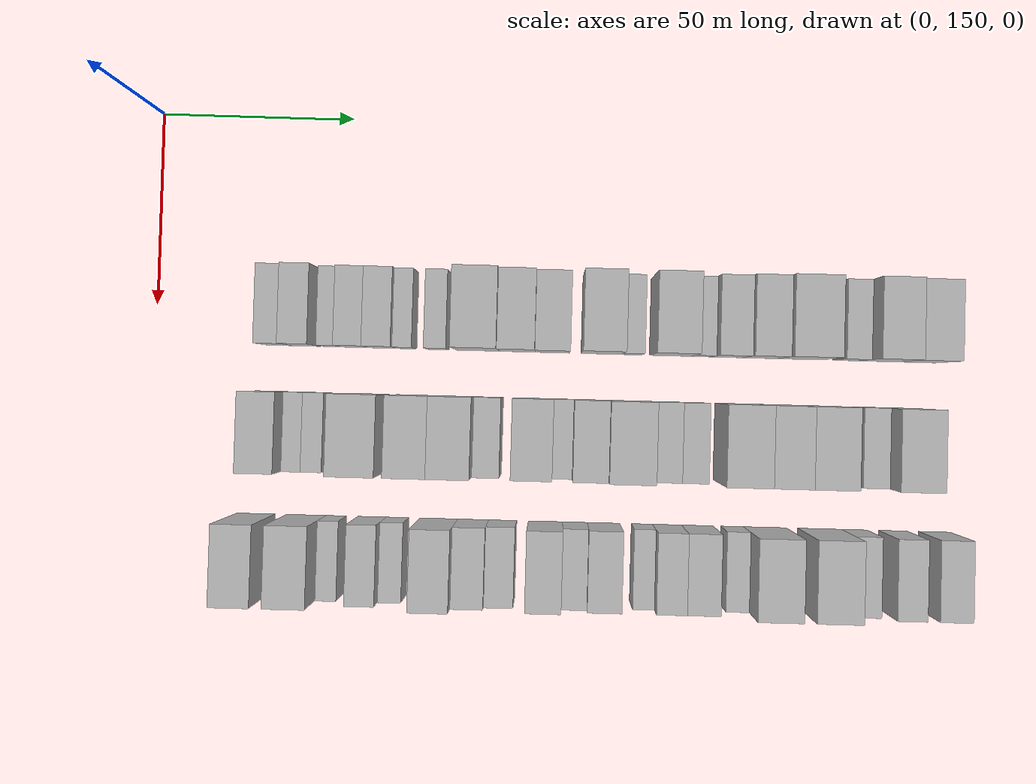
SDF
<sdf version="1.6">
 <world name="default">
  <model name="building_56">
   <static>1</static>
   <pose>50.0000 182.4300 0 0.000000 0.000000 0.000000</pose>
   <link name="link">
    <pose>0 0 7.50 0 0 0</pose>
    <collision name="collision"><geometry><box><size>20.0000 6.6333 15.0000</size></box></geometry></collision>
    <visual name="visual">
     <cast_shadows>0</cast_shadows>
     <geometry><box><size>20.0000 6.6333 15.0000</size></box></geometry>
     <material>
      <script>
       <uri>model://HANNAS_wall/materials/scripts</uri>
       <uri>model://HANNAS_wall/materials/textures</uri>
       <name>vrc/HANNAS_wall</name>
      </script>
     </material>
    </visual>
   </link>
  </model>
  <model name="building_57">
   <static>1</static>
   <pose>50.0000 189.4696 0 0.000000 0.000000 0.000000</pose>
   <link name="link">
    <pose>0 0 9.00 0 0 0</pose>
    <collision name="collision"><geometry><box><size>20.0000 7.4459 18.0000</size></box></geometry></collision>
    <visual name="visual">
     <cast_shadows>0</cast_shadows>
     <geometry><box><size>20.0000 7.4459 18.0000</size></box></geometry>
     <material>
      <script>
       <uri>model://HANNAS_wall/materials/scripts</uri>
       <uri>model://HANNAS_wall/materials/textures</uri>
       <name>vrc/HANNAS_wall</name>
      </script>
     </material>
    </visual>
   </link>
  </model>
  <model name="building_58">
   <static>1</static>
   <pose>50.0000 196.5991 0 0.000000 0.000000 0.000000</pose>
   <link name="link">
    <pose>0 0 6.00 0 0 0</pose>
    <collision name="collision"><geometry><box><size>20.0000 4.8131 12.0000</size></box></geometry></collision>
    <visual name="visual">
     <cast_shadows>0</cast_shadows>
     <geometry><box><size>20.0000 4.8131 12.0000</size></box></geometry>
     <material>
      <script>
       <uri>model://HANNAS_wall/materials/scripts</uri>
       <uri>model://HANNAS_wall/materials/textures</uri>
       <name>vrc/HANNAS_wall</name>
      </script>
     </material>
    </visual>
   </link>
  </model>
  <model name="building_59">
   <static>1</static>
   <pose>50.0000 202.5334 0 0.000000 0.000000 0.000000</pose>
   <link name="link">
    <pose>0 0 7.50 0 0 0</pose>
    <collision name="collision"><geometry><box><size>20.0000 7.0557 15.0000</size></box></geometry></collision>
    <visual name="visual">
     <cast_shadows>0</cast_shadows>
     <geometry><box><size>20.0000 7.0557 15.0000</size></box></geometry>
     <material>
      <script>
       <uri>model://HANNAS_wall/materials/scripts</uri>
       <uri>model://HANNAS_wall/materials/textures</uri>
       <name>vrc/HANNAS_wall</name>
      </script>
     </material>
    </visual>
   </link>
  </model>
  <model name="building_60">
   <static>1</static>
   <pose>50.0000 209.7156 0 0.000000 0.000000 0.000000</pose>
   <link name="link">
    <pose>0 0 7.50 0 0 0</pose>
    <collision name="collision"><geometry><box><size>20.0000 7.3086 15.0000</size></box></geometry></collision>
    <visual name="visual">
     <cast_shadows>0</cast_shadows>
     <geometry><box><size>20.0000 7.3086 15.0000</size></box></geometry>
     <material>
      <script>
       <uri>model://HANNAS_wall/materials/scripts</uri>
       <uri>model://HANNAS_wall/materials/textures</uri>
       <name>vrc/HANNAS_wall</name>
      </script>
     </material>
    </visual>
   </link>
  </model>
  <model name="building_61">
   <static>1</static>
   <pose>50.0000 215.8235 0 0.000000 0.000000 0.000000</pose>
   <link name="link">
    <pose>0 0 6.00 0 0 0</pose>
    <collision name="collision"><geometry><box><size>20.0000 4.9073 12.0000</size></box></geometry></collision>
    <visual name="visual">
     <cast_shadows>0</cast_shadows>
     <geometry><box><size>20.0000 4.9073 12.0000</size></box></geometry>
     <material>
      <script>
       <uri>model://HANNAS_wall/materials/scripts</uri>
       <uri>model://HANNAS_wall/materials/textures</uri>
       <name>vrc/HANNAS_wall</name>
      </script>
     </material>
    </visual>
   </link>
  </model>
  <model name="building_62">
   <static>1</static>
   <pose>50.0000 224.0926 0 0.000000 0.000000 0.000000</pose>
   <link name="link">
    <pose>0 0 6.00 0 0 0</pose>
    <collision name="collision"><geometry><box><size>20.0000 5.6309 12.0000</size></box></geometry></collision>
    <visual name="visual">
     <cast_shadows>0</cast_shadows>
     <geometry><box><size>20.0000 5.6309 12.0000</size></box></geometry>
     <material>
      <script>
       <uri>model://HANNAS_wall/materials/scripts</uri>
       <uri>model://HANNAS_wall/materials/textures</uri>
       <name>vrc/HANNAS_wall</name>
      </script>
     </material>
    </visual>
   </link>
  </model>
  <model name="building_63">
   <static>1</static>
   <pose>50.0000 234.5183 0 0.000000 0.000000 0.000000</pose>
   <link name="link">
    <pose>0 0 12.00 0 0 0</pose>
    <collision name="collision"><geometry><box><size>20.0000 11.2204 24.0000</size></box></geometry></collision>
    <visual name="visual">
     <cast_shadows>0</cast_shadows>
     <geometry><box><size>20.0000 11.2204 24.0000</size></box></geometry>
     <material>
      <script>
       <uri>model://HANNAS_wall/materials/scripts</uri>
       <uri>model://HANNAS_wall/materials/textures</uri>
       <name>vrc/HANNAS_wall</name>
      </script>
     </material>
    </visual>
   </link>
  </model>
  <model name="building_64">
   <static>1</static>
   <pose>50.0000 244.7944 0 0.000000 0.000000 0.000000</pose>
   <link name="link">
    <pose>0 0 10.50 0 0 0</pose>
    <collision name="collision"><geometry><box><size>20.0000 9.3319 21.0000</size></box></geometry></collision>
    <visual name="visual">
     <cast_shadows>0</cast_shadows>
     <geometry><box><size>20.0000 9.3319 21.0000</size></box></geometry>
     <material>
      <script>
       <uri>model://HANNAS_wall/materials/scripts</uri>
       <uri>model://HANNAS_wall/materials/textures</uri>
       <name>vrc/HANNAS_wall</name>
      </script>
     </material>
    </visual>
   </link>
  </model>
  <model name="building_65">
   <static>1</static>
   <pose>50.0000 253.8819 0 0.000000 0.000000 0.000000</pose>
   <link name="link">
    <pose>0 0 9.00 0 0 0</pose>
    <collision name="collision"><geometry><box><size>20.0000 8.8429 18.0000</size></box></geometry></collision>
    <visual name="visual">
     <cast_shadows>0</cast_shadows>
     <geometry><box><size>20.0000 8.8429 18.0000</size></box></geometry>
     <material>
      <script>
       <uri>model://HANNAS_wall/materials/scripts</uri>
       <uri>model://HANNAS_wall/materials/textures</uri>
       <name>vrc/HANNAS_wall</name>
      </script>
     </material>
    </visual>
   </link>
  </model>
  <model name="building_66">
   <static>1</static>
   <pose>50.0000 266.5570 0 0.000000 0.000000 0.000000</pose>
   <link name="link">
    <pose>0 0 12.00 0 0 0</pose>
    <collision name="collision"><geometry><box><size>20.0000 10.5074 24.0000</size></box></geometry></collision>
    <visual name="visual">
     <cast_shadows>0</cast_shadows>
     <geometry><box><size>20.0000 10.5074 24.0000</size></box></geometry>
     <material>
      <script>
       <uri>model://HANNAS_wall/materials/scripts</uri>
       <uri>model://HANNAS_wall/materials/textures</uri>
       <name>vrc/HANNAS_wall</name>
      </script>
     </material>
    </visual>
   </link>
  </model>
  <model name="building_67">
   <static>1</static>
   <pose>50.0000 274.4981 0 0.000000 0.000000 0.000000</pose>
   <link name="link">
    <pose>0 0 6.00 0 0 0</pose>
    <collision name="collision"><geometry><box><size>20.0000 5.3747 12.0000</size></box></geometry></collision>
    <visual name="visual">
     <cast_shadows>0</cast_shadows>
     <geometry><box><size>20.0000 5.3747 12.0000</size></box></geometry>
     <material>
      <script>
       <uri>model://HANNAS_wall/materials/scripts</uri>
       <uri>model://HANNAS_wall/materials/textures</uri>
       <name>vrc/HANNAS_wall</name>
      </script>
     </material>
    </visual>
   </link>
  </model>
  <model name="building_68">
   <static>1</static>
   <pose>50.0000 284.5289 0 0.000000 0.000000 0.000000</pose>
   <link name="link">
    <pose>0 0 12.00 0 0 0</pose>
    <collision name="collision"><geometry><box><size>20.0000 10.6868 24.0000</size></box></geometry></collision>
    <visual name="visual">
     <cast_shadows>0</cast_shadows>
     <geometry><box><size>20.0000 10.6868 24.0000</size></box></geometry>
     <material>
      <script>
       <uri>model://HANNAS_wall/materials/scripts</uri>
       <uri>model://HANNAS_wall/materials/textures</uri>
       <name>vrc/HANNAS_wall</name>
      </script>
     </material>
    </visual>
   </link>
  </model>
  <model name="building_69">
   <static>1</static>
   <pose>50.0000 292.5193 0 0.000000 0.000000 0.000000</pose>
   <link name="link">
    <pose>0 0 6.00 0 0 0</pose>
    <collision name="collision"><geometry><box><size>20.0000 5.2940 12.0000</size></box></geometry></collision>
    <visual name="visual">
     <cast_shadows>0</cast_shadows>
     <geometry><box><size>20.0000 5.2940 12.0000</size></box></geometry>
     <material>
      <script>
       <uri>model://HANNAS_wall/materials/scripts</uri>
       <uri>model://HANNAS_wall/materials/textures</uri>
       <name>vrc/HANNAS_wall</name>
      </script>
     </material>
    </visual>
   </link>
  </model>
  <model name="building_70">
   <static>1</static>
   <pose>50.0000 299.2344 0 0.000000 0.000000 0.000000</pose>
   <link name="link">
    <pose>0 0 9.00 0 0 0</pose>
    <collision name="collision"><geometry><box><size>20.0000 8.1361 18.0000</size></box></geometry></collision>
    <visual name="visual">
     <cast_shadows>0</cast_shadows>
     <geometry><box><size>20.0000 8.1361 18.0000</size></box></geometry>
     <material>
      <script>
       <uri>model://HANNAS_wall/materials/scripts</uri>
       <uri>model://HANNAS_wall/materials/textures</uri>
       <name>vrc/HANNAS_wall</name>
      </script>
     </material>
    </visual>
   </link>
  </model>
  <model name="building_71">
   <static>1</static>
   <pose>50.0000 307.7623 0 0.000000 0.000000 0.000000</pose>
   <link name="link">
    <pose>0 0 10.50 0 0 0</pose>
    <collision name="collision"><geometry><box><size>20.0000 8.9197 21.0000</size></box></geometry></collision>
    <visual name="visual">
     <cast_shadows>0</cast_shadows>
     <geometry><box><size>20.0000 8.9197 21.0000</size></box></geometry>
     <material>
      <script>
       <uri>model://HANNAS_wall/materials/scripts</uri>
       <uri>model://HANNAS_wall/materials/textures</uri>
       <name>vrc/HANNAS_wall</name>
      </script>
     </material>
    </visual>
   </link>
  </model>
  <model name="building_72">
   <static>1</static>
   <pose>50.0000 318.1868 0 0.000000 0.000000 0.000000</pose>
   <link name="link">
    <pose>0 0 12.00 0 0 0</pose>
    <collision name="collision"><geometry><box><size>20.0000 11.9293 24.0000</size></box></geometry></collision>
    <visual name="visual">
     <cast_shadows>0</cast_shadows>
     <geometry><box><size>20.0000 11.9293 24.0000</size></box></geometry>
     <material>
      <script>
       <uri>model://HANNAS_wall/materials/scripts</uri>
       <uri>model://HANNAS_wall/materials/textures</uri>
       <name>vrc/HANNAS_wall</name>
      </script>
     </material>
    </visual>
   </link>
  </model>
  <model name="building_73">
   <static>1</static>
   <pose>50.0000 330.2872 0 0.000000 0.000000 0.000000</pose>
   <link name="link">
    <pose>0 0 7.50 0 0 0</pose>
    <collision name="collision"><geometry><box><size>20.0000 6.2715 15.0000</size></box></geometry></collision>
    <visual name="visual">
     <cast_shadows>0</cast_shadows>
     <geometry><box><size>20.0000 6.2715 15.0000</size></box></geometry>
     <material>
      <script>
       <uri>model://HANNAS_wall/materials/scripts</uri>
       <uri>model://HANNAS_wall/materials/textures</uri>
       <name>vrc/HANNAS_wall</name>
      </script>
     </material>
    </visual>
   </link>
  </model>
  <model name="building_74">
   <static>1</static>
   <pose>50.0000 338.5580 0 0.000000 0.000000 0.000000</pose>
   <link name="link">
    <pose>0 0 12.00 0 0 0</pose>
    <collision name="collision"><geometry><box><size>20.0000 10.2700 24.0000</size></box></geometry></collision>
    <visual name="visual">
     <cast_shadows>0</cast_shadows>
     <geometry><box><size>20.0000 10.2700 24.0000</size></box></geometry>
     <material>
      <script>
       <uri>model://HANNAS_wall/materials/scripts</uri>
       <uri>model://HANNAS_wall/materials/textures</uri>
       <name>vrc/HANNAS_wall</name>
      </script>
     </material>
    </visual>
   </link>
  </model>
  <model name="building_75">
   <static>1</static>
   <pose>50.0000 348.9055 0 0.000000 0.000000 0.000000</pose>
   <link name="link">
    <pose>0 0 10.50 0 0 0</pose>
    <collision name="collision"><geometry><box><size>20.0000 10.4251 21.0000</size></box></geometry></collision>
    <visual name="visual">
     <cast_shadows>0</cast_shadows>
     <geometry><box><size>20.0000 10.4251 21.0000</size></box></geometry>
     <material>
      <script>
       <uri>model://HANNAS_wall/materials/scripts</uri>
       <uri>model://HANNAS_wall/materials/textures</uri>
       <name>vrc/HANNAS_wall</name>
      </script>
     </material>
    </visual>
   </link>
  </model>
  <model name="building_136">
   <static>1</static>
   <pose>82.0000 181.7821 0 0.000000 0.000000 0.000000</pose>
   <link name="link">
    <pose>0 0 10.50 0 0 0</pose>
    <collision name="collision"><geometry><box><size>20.0000 9.3565 21.0000</size></box></geometry></collision>
    <visual name="visual">
     <cast_shadows>0</cast_shadows>
     <geometry><box><size>20.0000 9.3565 21.0000</size></box></geometry>
     <material>
      <script>
       <uri>model://HANNAS_wall/materials/scripts</uri>
       <uri>model://HANNAS_wall/materials/textures</uri>
       <name>vrc/HANNAS_wall</name>
      </script>
     </material>
    </visual>
   </link>
  </model>
  <model name="building_137">
   <static>1</static>
   <pose>82.0000 188.8788 0 0.000000 0.000000 0.000000</pose>
   <link name="link">
    <pose>0 0 6.00 0 0 0</pose>
    <collision name="collision"><geometry><box><size>20.0000 4.8369 12.0000</size></box></geometry></collision>
    <visual name="visual">
     <cast_shadows>0</cast_shadows>
     <geometry><box><size>20.0000 4.8369 12.0000</size></box></geometry>
     <material>
      <script>
       <uri>model://HANNAS_wall/materials/scripts</uri>
       <uri>model://HANNAS_wall/materials/textures</uri>
       <name>vrc/HANNAS_wall</name>
      </script>
     </material>
    </visual>
   </link>
  </model>
  <model name="building_138">
   <static>1</static>
   <pose>82.0000 193.9530 0 0.000000 0.000000 0.000000</pose>
   <link name="link">
    <pose>0 0 6.00 0 0 0</pose>
    <collision name="collision"><geometry><box><size>20.0000 5.3114 12.0000</size></box></geometry></collision>
    <visual name="visual">
     <cast_shadows>0</cast_shadows>
     <geometry><box><size>20.0000 5.3114 12.0000</size></box></geometry>
     <material>
      <script>
       <uri>model://HANNAS_wall/materials/scripts</uri>
       <uri>model://HANNAS_wall/materials/textures</uri>
       <name>vrc/HANNAS_wall</name>
      </script>
     </material>
    </visual>
   </link>
  </model>
  <model name="building_139">
   <static>1</static>
   <pose>82.0000 205.5820 0 0.000000 0.000000 0.000000</pose>
   <link name="link">
    <pose>0 0 12.00 0 0 0</pose>
    <collision name="collision"><geometry><box><size>20.0000 11.9466 24.0000</size></box></geometry></collision>
    <visual name="visual">
     <cast_shadows>0</cast_shadows>
     <geometry><box><size>20.0000 11.9466 24.0000</size></box></geometry>
     <material>
      <script>
       <uri>model://HANNAS_wall/materials/scripts</uri>
       <uri>model://HANNAS_wall/materials/textures</uri>
       <name>vrc/HANNAS_wall</name>
      </script>
     </material>
    </visual>
   </link>
  </model>
  <model name="building_140">
   <static>1</static>
   <pose>82.0000 218.7564 0 0.000000 0.000000 0.000000</pose>
   <link name="link">
    <pose>0 0 12.00 0 0 0</pose>
    <collision name="collision"><geometry><box><size>20.0000 10.4022 24.0000</size></box></geometry></collision>
    <visual name="visual">
     <cast_shadows>0</cast_shadows>
     <geometry><box><size>20.0000 10.4022 24.0000</size></box></geometry>
     <material>
      <script>
       <uri>model://HANNAS_wall/materials/scripts</uri>
       <uri>model://HANNAS_wall/materials/textures</uri>
       <name>vrc/HANNAS_wall</name>
      </script>
     </material>
    </visual>
   </link>
  </model>
  <model name="building_141">
   <static>1</static>
   <pose>82.0000 229.2577 0 0.000000 0.000000 0.000000</pose>
   <link name="link">
    <pose>0 0 12.00 0 0 0</pose>
    <collision name="collision"><geometry><box><size>20.0000 10.6005 24.0000</size></box></geometry></collision>
    <visual name="visual">
     <cast_shadows>0</cast_shadows>
     <geometry><box><size>20.0000 10.6005 24.0000</size></box></geometry>
     <material>
      <script>
       <uri>model://HANNAS_wall/materials/scripts</uri>
       <uri>model://HANNAS_wall/materials/textures</uri>
       <name>vrc/HANNAS_wall</name>
      </script>
     </material>
    </visual>
   </link>
  </model>
  <model name="building_142">
   <static>1</static>
   <pose>82.0000 237.9479 0 0.000000 0.000000 0.000000</pose>
   <link name="link">
    <pose>0 0 7.50 0 0 0</pose>
    <collision name="collision"><geometry><box><size>20.0000 6.7798 15.0000</size></box></geometry></collision>
    <visual name="visual">
     <cast_shadows>0</cast_shadows>
     <geometry><box><size>20.0000 6.7798 15.0000</size></box></geometry>
     <material>
      <script>
       <uri>model://HANNAS_wall/materials/scripts</uri>
       <uri>model://HANNAS_wall/materials/textures</uri>
       <name>vrc/HANNAS_wall</name>
      </script>
     </material>
    </visual>
   </link>
  </model>
  <model name="building_143">
   <static>1</static>
   <pose>82.0000 249.4330 0 0.000000 0.000000 0.000000</pose>
   <link name="link">
    <pose>0 0 10.50 0 0 0</pose>
    <collision name="collision"><geometry><box><size>20.0000 10.1904 21.0000</size></box></geometry></collision>
    <visual name="visual">
     <cast_shadows>0</cast_shadows>
     <geometry><box><size>20.0000 10.1904 21.0000</size></box></geometry>
     <material>
      <script>
       <uri>model://HANNAS_wall/materials/scripts</uri>
       <uri>model://HANNAS_wall/materials/textures</uri>
       <name>vrc/HANNAS_wall</name>
      </script>
     </material>
    </visual>
   </link>
  </model>
  <model name="building_144">
   <static>1</static>
   <pose>82.0000 257.0626 0 0.000000 0.000000 0.000000</pose>
   <link name="link">
    <pose>0 0 6.00 0 0 0</pose>
    <collision name="collision"><geometry><box><size>20.0000 5.0688 12.0000</size></box></geometry></collision>
    <visual name="visual">
     <cast_shadows>0</cast_shadows>
     <geometry><box><size>20.0000 5.0688 12.0000</size></box></geometry>
     <material>
      <script>
       <uri>model://HANNAS_wall/materials/scripts</uri>
       <uri>model://HANNAS_wall/materials/textures</uri>
       <name>vrc/HANNAS_wall</name>
      </script>
     </material>
    </visual>
   </link>
  </model>
  <model name="building_145">
   <static>1</static>
   <pose>82.0000 264.0020 0 0.000000 0.000000 0.000000</pose>
   <link name="link">
    <pose>0 0 10.50 0 0 0</pose>
    <collision name="collision"><geometry><box><size>20.0000 8.8099 21.0000</size></box></geometry></collision>
    <visual name="visual">
     <cast_shadows>0</cast_shadows>
     <geometry><box><size>20.0000 8.8099 21.0000</size></box></geometry>
     <material>
      <script>
       <uri>model://HANNAS_wall/materials/scripts</uri>
       <uri>model://HANNAS_wall/materials/textures</uri>
       <name>vrc/HANNAS_wall</name>
      </script>
     </material>
    </visual>
   </link>
  </model>
  <model name="building_146">
   <static>1</static>
   <pose>82.0000 274.0922 0 0.000000 0.000000 0.000000</pose>
   <link name="link">
    <pose>0 0 12.00 0 0 0</pose>
    <collision name="collision"><geometry><box><size>20.0000 11.3705 24.0000</size></box></geometry></collision>
    <visual name="visual">
     <cast_shadows>0</cast_shadows>
     <geometry><box><size>20.0000 11.3705 24.0000</size></box></geometry>
     <material>
      <script>
       <uri>model://HANNAS_wall/materials/scripts</uri>
       <uri>model://HANNAS_wall/materials/textures</uri>
       <name>vrc/HANNAS_wall</name>
      </script>
     </material>
    </visual>
   </link>
  </model>
  <model name="building_147">
   <static>1</static>
   <pose>82.0000 283.3713 0 0.000000 0.000000 0.000000</pose>
   <link name="link">
    <pose>0 0 7.50 0 0 0</pose>
    <collision name="collision"><geometry><box><size>20.0000 7.1878 15.0000</size></box></geometry></collision>
    <visual name="visual">
     <cast_shadows>0</cast_shadows>
     <geometry><box><size>20.0000 7.1878 15.0000</size></box></geometry>
     <material>
      <script>
       <uri>model://HANNAS_wall/materials/scripts</uri>
       <uri>model://HANNAS_wall/materials/textures</uri>
       <name>vrc/HANNAS_wall</name>
      </script>
     </material>
    </visual>
   </link>
  </model>
  <model name="building_148">
   <static>1</static>
   <pose>82.0000 290.2867 0 0.000000 0.000000 0.000000</pose>
   <link name="link">
    <pose>0 0 7.50 0 0 0</pose>
    <collision name="collision"><geometry><box><size>20.0000 6.6428 15.0000</size></box></geometry></collision>
    <visual name="visual">
     <cast_shadows>0</cast_shadows>
     <geometry><box><size>20.0000 6.6428 15.0000</size></box></geometry>
     <material>
      <script>
       <uri>model://HANNAS_wall/materials/scripts</uri>
       <uri>model://HANNAS_wall/materials/textures</uri>
       <name>vrc/HANNAS_wall</name>
      </script>
     </material>
    </visual>
   </link>
  </model>
  <model name="building_149">
   <static>1</static>
   <pose>82.0000 302.3057 0 0.000000 0.000000 0.000000</pose>
   <link name="link">
    <pose>0 0 12.00 0 0 0</pose>
    <collision name="collision"><geometry><box><size>20.0000 11.3952 24.0000</size></box></geometry></collision>
    <visual name="visual">
     <cast_shadows>0</cast_shadows>
     <geometry><box><size>20.0000 11.3952 24.0000</size></box></geometry>
     <material>
      <script>
       <uri>model://HANNAS_wall/materials/scripts</uri>
       <uri>model://HANNAS_wall/materials/textures</uri>
       <name>vrc/HANNAS_wall</name>
      </script>
     </material>
    </visual>
   </link>
  </model>
  <model name="building_150">
   <static>1</static>
   <pose>82.0000 312.9027 0 0.000000 0.000000 0.000000</pose>
   <link name="link">
    <pose>0 0 12.00 0 0 0</pose>
    <collision name="collision"><geometry><box><size>20.0000 9.7989 24.0000</size></box></geometry></collision>
    <visual name="visual">
     <cast_shadows>0</cast_shadows>
     <geometry><box><size>20.0000 9.7989 24.0000</size></box></geometry>
     <material>
      <script>
       <uri>model://HANNAS_wall/materials/scripts</uri>
       <uri>model://HANNAS_wall/materials/textures</uri>
       <name>vrc/HANNAS_wall</name>
      </script>
     </material>
    </visual>
   </link>
  </model>
  <model name="building_151">
   <static>1</static>
   <pose>82.0000 323.3045 0 0.000000 0.000000 0.000000</pose>
   <link name="link">
    <pose>0 0 12.00 0 0 0</pose>
    <collision name="collision"><geometry><box><size>20.0000 11.0046 24.0000</size></box></geometry></collision>
    <visual name="visual">
     <cast_shadows>0</cast_shadows>
     <geometry><box><size>20.0000 11.0046 24.0000</size></box></geometry>
     <material>
      <script>
       <uri>model://HANNAS_wall/materials/scripts</uri>
       <uri>model://HANNAS_wall/materials/textures</uri>
       <name>vrc/HANNAS_wall</name>
      </script>
     </material>
    </visual>
   </link>
  </model>
  <model name="building_152">
   <static>1</static>
   <pose>82.0000 335.1400 0 0.000000 0.000000 0.000000</pose>
   <link name="link">
    <pose>0 0 7.50 0 0 0</pose>
    <collision name="collision"><geometry><box><size>20.0000 6.6664 15.0000</size></box></geometry></collision>
    <visual name="visual">
     <cast_shadows>0</cast_shadows>
     <geometry><box><size>20.0000 6.6664 15.0000</size></box></geometry>
     <material>
      <script>
       <uri>model://HANNAS_wall/materials/scripts</uri>
       <uri>model://HANNAS_wall/materials/textures</uri>
       <name>vrc/HANNAS_wall</name>
      </script>
     </material>
    </visual>
   </link>
  </model>
  <model name="building_153">
   <static>1</static>
   <pose>82.0000 343.9648 0 0.000000 0.000000 0.000000</pose>
   <link name="link">
    <pose>0 0 12.00 0 0 0</pose>
    <collision name="collision"><geometry><box><size>20.0000 10.9830 24.0000</size></box></geometry></collision>
    <visual name="visual">
     <cast_shadows>0</cast_shadows>
     <geometry><box><size>20.0000 10.9830 24.0000</size></box></geometry>
     <material>
      <script>
       <uri>model://HANNAS_wall/materials/scripts</uri>
       <uri>model://HANNAS_wall/materials/textures</uri>
       <name>vrc/HANNAS_wall</name>
      </script>
     </material>
    </visual>
   </link>
  </model>
  <model name="building_215">
   <static>1</static>
   <pose>114.0000 177.6484 0 0.000000 0.000000 0.000000</pose>
   <link name="link">
    <pose>0 0 12.00 0 0 0</pose>
    <collision name="collision"><geometry><box><size>20.0000 9.9827 24.0000</size></box></geometry></collision>
    <visual name="visual">
     <cast_shadows>0</cast_shadows>
     <geometry><box><size>20.0000 9.9827 24.0000</size></box></geometry>
     <material>
      <script>
       <uri>model://HANNAS_wall/materials/scripts</uri>
       <uri>model://HANNAS_wall/materials/textures</uri>
       <name>vrc/HANNAS_wall</name>
      </script>
     </material>
    </visual>
   </link>
  </model>
  <model name="building_216">
   <static>1</static>
   <pose>114.0000 190.8417 0 0.000000 0.000000 0.000000</pose>
   <link name="link">
    <pose>0 0 12.00 0 0 0</pose>
    <collision name="collision"><geometry><box><size>20.0000 10.4038 24.0000</size></box></geometry></collision>
    <visual name="visual">
     <cast_shadows>0</cast_shadows>
     <geometry><box><size>20.0000 10.4038 24.0000</size></box></geometry>
     <material>
      <script>
       <uri>model://HANNAS_wall/materials/scripts</uri>
       <uri>model://HANNAS_wall/materials/textures</uri>
       <name>vrc/HANNAS_wall</name>
      </script>
     </material>
    </visual>
   </link>
  </model>
  <model name="building_217">
   <static>1</static>
   <pose>114.0000 198.6776 0 0.000000 0.000000 0.000000</pose>
   <link name="link">
    <pose>0 0 6.00 0 0 0</pose>
    <collision name="collision"><geometry><box><size>20.0000 5.2680 12.0000</size></box></geometry></collision>
    <visual name="visual">
     <cast_shadows>0</cast_shadows>
     <geometry><box><size>20.0000 5.2680 12.0000</size></box></geometry>
     <material>
      <script>
       <uri>model://HANNAS_wall/materials/scripts</uri>
       <uri>model://HANNAS_wall/materials/textures</uri>
       <name>vrc/HANNAS_wall</name>
      </script>
     </material>
    </visual>
   </link>
  </model>
  <model name="building_218">
   <static>1</static>
   <pose>114.0000 208.0117 0 0.000000 0.000000 0.000000</pose>
   <link name="link">
    <pose>0 0 9.00 0 0 0</pose>
    <collision name="collision"><geometry><box><size>20.0000 7.4004 18.0000</size></box></geometry></collision>
    <visual name="visual">
     <cast_shadows>0</cast_shadows>
     <geometry><box><size>20.0000 7.4004 18.0000</size></box></geometry>
     <material>
      <script>
       <uri>model://HANNAS_wall/materials/scripts</uri>
       <uri>model://HANNAS_wall/materials/textures</uri>
       <name>vrc/HANNAS_wall</name>
      </script>
     </material>
    </visual>
   </link>
  </model>
  <model name="building_219">
   <static>1</static>
   <pose>114.0000 214.6304 0 0.000000 0.000000 0.000000</pose>
   <link name="link">
    <pose>0 0 6.00 0 0 0</pose>
    <collision name="collision"><geometry><box><size>20.0000 5.8371 12.0000</size></box></geometry></collision>
    <visual name="visual">
     <cast_shadows>0</cast_shadows>
     <geometry><box><size>20.0000 5.8371 12.0000</size></box></geometry>
     <material>
      <script>
       <uri>model://HANNAS_wall/materials/scripts</uri>
       <uri>model://HANNAS_wall/materials/textures</uri>
       <name>vrc/HANNAS_wall</name>
      </script>
     </material>
    </visual>
   </link>
  </model>
  <model name="building_220">
   <static>1</static>
   <pose>114.0000 225.4556 0 0.000000 0.000000 0.000000</pose>
   <link name="link">
    <pose>0 0 12.00 0 0 0</pose>
    <collision name="collision"><geometry><box><size>20.0000 9.8132 24.0000</size></box></geometry></collision>
    <visual name="visual">
     <cast_shadows>0</cast_shadows>
     <geometry><box><size>20.0000 9.8132 24.0000</size></box></geometry>
     <material>
      <script>
       <uri>model://HANNAS_wall/materials/scripts</uri>
       <uri>model://HANNAS_wall/materials/textures</uri>
       <name>vrc/HANNAS_wall</name>
      </script>
     </material>
    </visual>
   </link>
  </model>
  <model name="building_221">
   <static>1</static>
   <pose>114.0000 234.3953 0 0.000000 0.000000 0.000000</pose>
   <link name="link">
    <pose>0 0 9.00 0 0 0</pose>
    <collision name="collision"><geometry><box><size>20.0000 8.0663 18.0000</size></box></geometry></collision>
    <visual name="visual">
     <cast_shadows>0</cast_shadows>
     <geometry><box><size>20.0000 8.0663 18.0000</size></box></geometry>
     <material>
      <script>
       <uri>model://HANNAS_wall/materials/scripts</uri>
       <uri>model://HANNAS_wall/materials/textures</uri>
       <name>vrc/HANNAS_wall</name>
      </script>
     </material>
    </visual>
   </link>
  </model>
  <model name="building_222">
   <static>1</static>
   <pose>114.0000 242.0680 0 0.000000 0.000000 0.000000</pose>
   <link name="link">
    <pose>0 0 7.50 0 0 0</pose>
    <collision name="collision"><geometry><box><size>20.0000 7.2792 15.0000</size></box></geometry></collision>
    <visual name="visual">
     <cast_shadows>0</cast_shadows>
     <geometry><box><size>20.0000 7.2792 15.0000</size></box></geometry>
     <material>
      <script>
       <uri>model://HANNAS_wall/materials/scripts</uri>
       <uri>model://HANNAS_wall/materials/textures</uri>
       <name>vrc/HANNAS_wall</name>
      </script>
     </material>
    </visual>
   </link>
  </model>
  <model name="building_223">
   <static>1</static>
   <pose>114.0000 253.1464 0 0.000000 0.000000 0.000000</pose>
   <link name="link">
    <pose>0 0 10.50 0 0 0</pose>
    <collision name="collision"><geometry><box><size>20.0000 8.8775 21.0000</size></box></geometry></collision>
    <visual name="visual">
     <cast_shadows>0</cast_shadows>
     <geometry><box><size>20.0000 8.8775 21.0000</size></box></geometry>
     <material>
      <script>
       <uri>model://HANNAS_wall/materials/scripts</uri>
       <uri>model://HANNAS_wall/materials/textures</uri>
       <name>vrc/HANNAS_wall</name>
      </script>
     </material>
    </visual>
   </link>
  </model>
  <model name="building_224">
   <static>1</static>
   <pose>114.0000 260.8043 0 0.000000 0.000000 0.000000</pose>
   <link name="link">
    <pose>0 0 7.50 0 0 0</pose>
    <collision name="collision"><geometry><box><size>20.0000 6.4382 15.0000</size></box></geometry></collision>
    <visual name="visual">
     <cast_shadows>0</cast_shadows>
     <geometry><box><size>20.0000 6.4382 15.0000</size></box></geometry>
     <material>
      <script>
       <uri>model://HANNAS_wall/materials/scripts</uri>
       <uri>model://HANNAS_wall/materials/textures</uri>
       <name>vrc/HANNAS_wall</name>
      </script>
     </material>
    </visual>
   </link>
  </model>
  <model name="building_225">
   <static>1</static>
   <pose>114.0000 268.2910 0 0.000000 0.000000 0.000000</pose>
   <link name="link">
    <pose>0 0 9.00 0 0 0</pose>
    <collision name="collision"><geometry><box><size>20.0000 8.5350 18.0000</size></box></geometry></collision>
    <visual name="visual">
     <cast_shadows>0</cast_shadows>
     <geometry><box><size>20.0000 8.5350 18.0000</size></box></geometry>
     <material>
      <script>
       <uri>model://HANNAS_wall/materials/scripts</uri>
       <uri>model://HANNAS_wall/materials/textures</uri>
       <name>vrc/HANNAS_wall</name>
      </script>
     </material>
    </visual>
   </link>
  </model>
  <model name="building_226">
   <static>1</static>
   <pose>114.0000 278.2818 0 0.000000 0.000000 0.000000</pose>
   <link name="link">
    <pose>0 0 6.00 0 0 0</pose>
    <collision name="collision"><geometry><box><size>20.0000 5.4466 12.0000</size></box></geometry></collision>
    <visual name="visual">
     <cast_shadows>0</cast_shadows>
     <geometry><box><size>20.0000 5.4466 12.0000</size></box></geometry>
     <material>
      <script>
       <uri>model://HANNAS_wall/materials/scripts</uri>
       <uri>model://HANNAS_wall/materials/textures</uri>
       <name>vrc/HANNAS_wall</name>
      </script>
     </material>
    </visual>
   </link>
  </model>
  <model name="building_227">
   <static>1</static>
   <pose>114.0000 284.7926 0 0.000000 0.000000 0.000000</pose>
   <link name="link">
    <pose>0 0 9.00 0 0 0</pose>
    <collision name="collision"><geometry><box><size>20.0000 7.5751 18.0000</size></box></geometry></collision>
    <visual name="visual">
     <cast_shadows>0</cast_shadows>
     <geometry><box><size>20.0000 7.5751 18.0000</size></box></geometry>
     <material>
      <script>
       <uri>model://HANNAS_wall/materials/scripts</uri>
       <uri>model://HANNAS_wall/materials/textures</uri>
       <name>vrc/HANNAS_wall</name>
      </script>
     </material>
    </visual>
   </link>
  </model>
  <model name="building_228">
   <static>1</static>
   <pose>114.0000 292.7247 0 0.000000 0.000000 0.000000</pose>
   <link name="link">
    <pose>0 0 9.00 0 0 0</pose>
    <collision name="collision"><geometry><box><size>20.0000 8.2892 18.0000</size></box></geometry></collision>
    <visual name="visual">
     <cast_shadows>0</cast_shadows>
     <geometry><box><size>20.0000 8.2892 18.0000</size></box></geometry>
     <material>
      <script>
       <uri>model://HANNAS_wall/materials/scripts</uri>
       <uri>model://HANNAS_wall/materials/textures</uri>
       <name>vrc/HANNAS_wall</name>
      </script>
     </material>
    </visual>
   </link>
  </model>
  <model name="building_229">
   <static>1</static>
   <pose>114.0000 301.8213 0 0.000000 0.000000 0.000000</pose>
   <link name="link">
    <pose>0 0 6.00 0 0 0</pose>
    <collision name="collision"><geometry><box><size>20.0000 5.9040 12.0000</size></box></geometry></collision>
    <visual name="visual">
     <cast_shadows>0</cast_shadows>
     <geometry><box><size>20.0000 5.9040 12.0000</size></box></geometry>
     <material>
      <script>
       <uri>model://HANNAS_wall/materials/scripts</uri>
       <uri>model://HANNAS_wall/materials/textures</uri>
       <name>vrc/HANNAS_wall</name>
      </script>
     </material>
    </visual>
   </link>
  </model>
  <model name="building_230">
   <static>1</static>
   <pose>114.0000 310.3878 0 0.000000 0.000000 0.000000</pose>
   <link name="link">
    <pose>0 0 12.00 0 0 0</pose>
    <collision name="collision"><geometry><box><size>20.0000 11.2290 24.0000</size></box></geometry></collision>
    <visual name="visual">
     <cast_shadows>0</cast_shadows>
     <geometry><box><size>20.0000 11.2290 24.0000</size></box></geometry>
     <material>
      <script>
       <uri>model://HANNAS_wall/materials/scripts</uri>
       <uri>model://HANNAS_wall/materials/textures</uri>
       <name>vrc/HANNAS_wall</name>
      </script>
     </material>
    </visual>
   </link>
  </model>
  <model name="building_231">
   <static>1</static>
   <pose>114.0000 324.6762 0 0.000000 0.000000 0.000000</pose>
   <link name="link">
    <pose>0 0 12.00 0 0 0</pose>
    <collision name="collision"><geometry><box><size>20.0000 11.3478 24.0000</size></box></geometry></collision>
    <visual name="visual">
     <cast_shadows>0</cast_shadows>
     <geometry><box><size>20.0000 11.3478 24.0000</size></box></geometry>
     <material>
      <script>
       <uri>model://HANNAS_wall/materials/scripts</uri>
       <uri>model://HANNAS_wall/materials/textures</uri>
       <name>vrc/HANNAS_wall</name>
      </script>
     </material>
    </visual>
   </link>
  </model>
  <model name="building_232">
   <static>1</static>
   <pose>114.0000 333.6922 0 0.000000 0.000000 0.000000</pose>
   <link name="link">
    <pose>0 0 7.50 0 0 0</pose>
    <collision name="collision"><geometry><box><size>20.0000 6.6841 15.0000</size></box></geometry></collision>
    <visual name="visual">
     <cast_shadows>0</cast_shadows>
     <geometry><box><size>20.0000 6.6841 15.0000</size></box></geometry>
     <material>
      <script>
       <uri>model://HANNAS_wall/materials/scripts</uri>
       <uri>model://HANNAS_wall/materials/textures</uri>
       <name>vrc/HANNAS_wall</name>
      </script>
     </material>
    </visual>
   </link>
  </model>
  <model name="building_233">
   <static>1</static>
   <pose>114.0000 343.7716 0 0.000000 0.000000 0.000000</pose>
   <link name="link">
    <pose>0 0 9.00 0 0 0</pose>
    <collision name="collision"><geometry><box><size>20.0000 7.4747 18.0000</size></box></geometry></collision>
    <visual name="visual">
     <cast_shadows>0</cast_shadows>
     <geometry><box><size>20.0000 7.4747 18.0000</size></box></geometry>
     <material>
      <script>
       <uri>model://HANNAS_wall/materials/scripts</uri>
       <uri>model://HANNAS_wall/materials/textures</uri>
       <name>vrc/HANNAS_wall</name>
      </script>
     </material>
    </visual>
   </link>
  </model>
  <model name="building_234">
   <static>1</static>
   <pose>114.0000 354.6402 0 0.000000 0.000000 0.000000</pose>
   <link name="link">
    <pose>0 0 9.00 0 0 0</pose>
    <collision name="collision"><geometry><box><size>20.0000 8.2625 18.0000</size></box></geometry></collision>
    <visual name="visual">
     <cast_shadows>0</cast_shadows>
     <geometry><box><size>20.0000 8.2625 18.0000</size></box></geometry>
     <material>
      <script>
       <uri>model://HANNAS_wall/materials/scripts</uri>
       <uri>model://HANNAS_wall/materials/textures</uri>
       <name>vrc/HANNAS_wall</name>
      </script>
     </material>
    </visual>
   </link>
  </model>
 </world>
</sdf>
